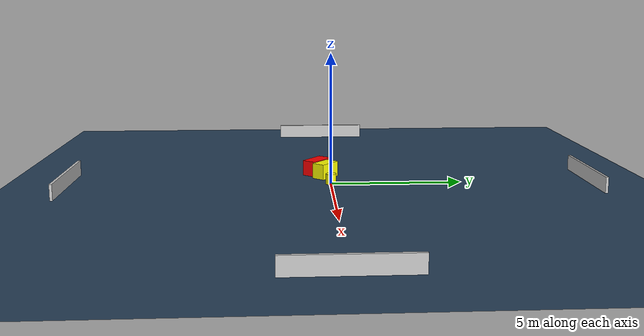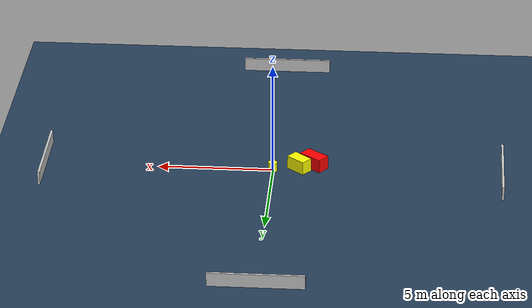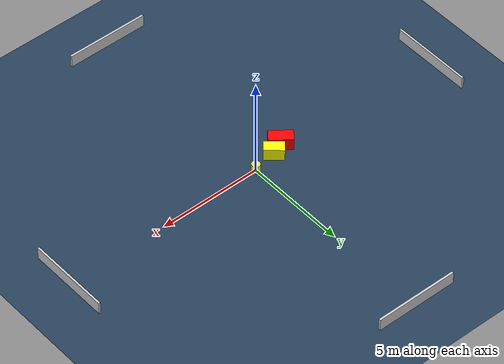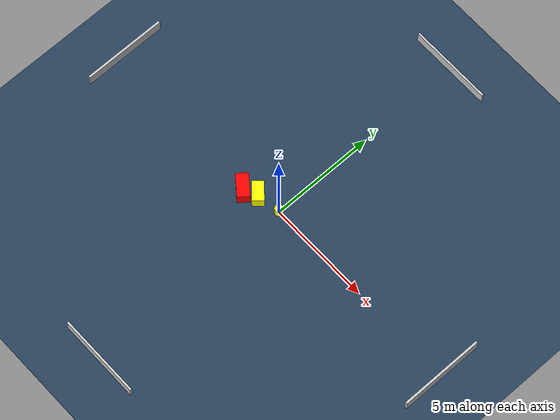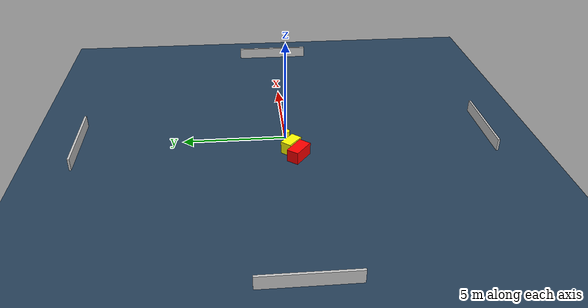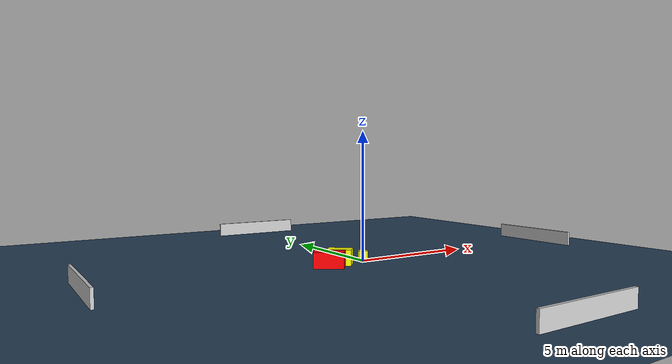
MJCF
<?xml version="1.0" ?>
<mujoco model="generated_environment">
  <option timestep="0.01" integrator="RK4" cone="elliptic"/>
  <default>
    <geom density="1"/>
  </default>
  <asset>
    <texture builtin="gradient" height="3072" name="skybox" rgb1="0.3 0.5 0.7" rgb2="0 0 0" type="skybox" width="512"/>
    <texture builtin="checker" height="300" name="groundplane" rgb1="0.2 0.3 0.4" rgb2="0.1 0.2 0.3" type="2d" width="300"/>
    <material name="groundplane" reflectance="0.2" texrepeat="5 5" texture="groundplane"/>
  </asset>
  <worldbody>
    <light dir="0 0 -1" directional="true" pos="0 0 1.5"/>
    <geom condim="3" friction="0.5 0.005 0.001" material="groundplane" name="floor" pos="0 0 0" size="0 0 0.05" type="plane"/>
    <body name="walls">
      <geom name="wall_1" condim="4" pos="-10.0 0.0 0.3" rgba="0.800000011920929 0.800000011920929 0.800000011920929 1.0" size="0.05 2.0 0.3" type="box"/>
      <geom name="wall_2" condim="4" pos="10.0 0.0 0.3" rgba="0.800000011920929 0.800000011920929 0.800000011920929 1.0" size="0.05 2.0 0.3" type="box"/>
      <geom name="wall_3" condim="4" pos="0.0 -10.0 0.3" rgba="0.800000011920929 0.800000011920929 0.800000011920929 1.0" size="2.0 0.05 0.3" type="box"/>
      <geom name="wall_4" condim="4" pos="0.0 10.0 0.3" rgba="0.800000011920929 0.800000011920929 0.800000011920929 1.0" size="2.0 0.05 0.3" type="box"/>
    </body>
    <body name="robot">
      <joint name="joint_x" type="slide" pos="0 0 0" axis="1 0 0"/>
      <joint name="joint_y" type="slide" pos="0 0 0" axis="0 1 0"/>
      <geom name="robot" type="cylinder" pos="0.0 0.0 0.2" size="0.2 0.2 0.0" mass="5.0" friction="1.0 0.005 0.0001" condim="4" rgba="1.0 1.0 0.0 1.0"/>
    </body>
    <body name="obstacle_1_movable">
      <geom name="obstacle_1_movable" condim="4" pos="-1.1453510306080417 -0.16947945519912108 0.3" euler="0 0 319.2613324455993" friction="0.0 0.005 0.001" rgba="1.0 1.0 0.0 1.0" size="0.46130341899873756 0.26945100090686147 0.3" type="box" mass="0.1"/>
      <joint type="free"/>
    </body>
    <body name="obstacle_2_static">
      <geom name="obstacle_2_static" condim="4" pos="-1.7839837615476726 -0.4669514496467078 0.3" euler="0 0 322.0132857974777" friction="0.0 0.005 0.001" rgba="1.0 0.0 0.0 1.0" size="0.5568766659385285 0.29482966565116114 0.3" type="box"/>
    </body>
  </worldbody>
  <actuator>
    <motor name="actuator_x" joint="joint_x" gear="1" ctrlrange="-1 1"/>
    <motor name="actuator_y" joint="joint_y" gear="1" ctrlrange="-1 1"/>
  </actuator>
</mujoco>
